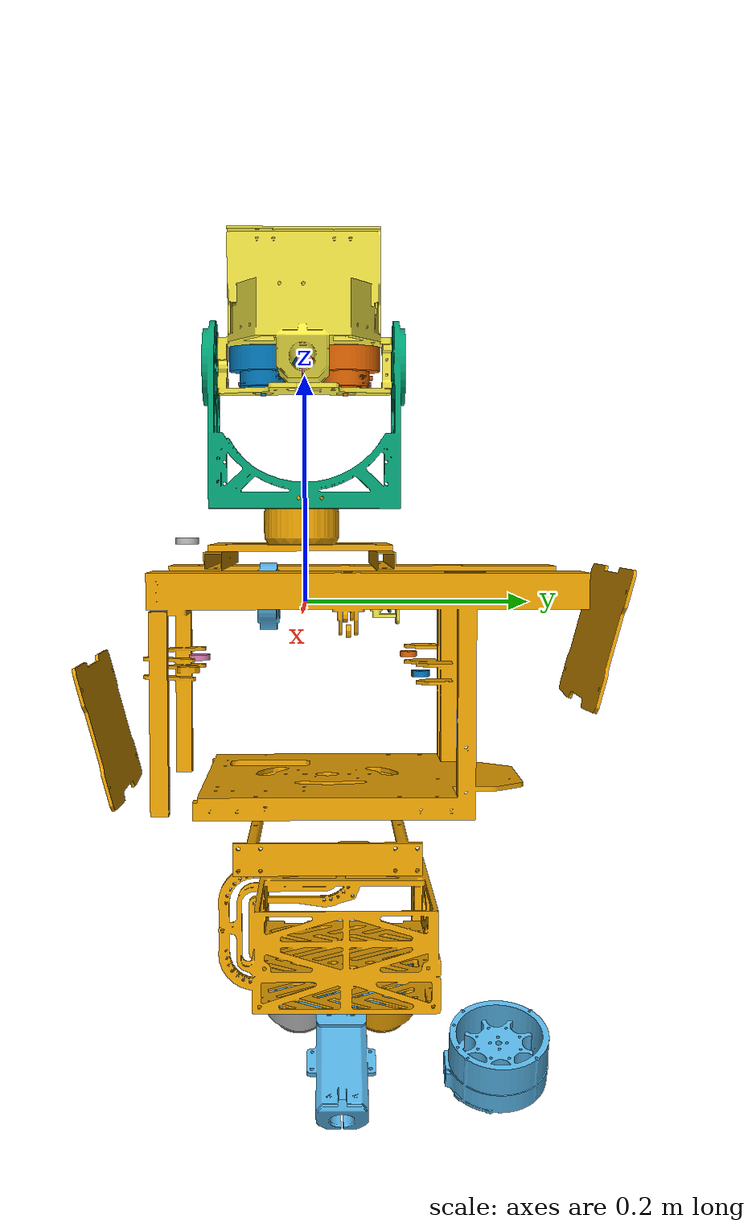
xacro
<?xml version="1.0"?>
<robot xmlns:xacro="http://www.ros.org/wiki/xacro" name="sentry">

    <xacro:arg name="load_chassis" default="true"/>
    <xacro:arg name="load_gimbal" default="true"/>
    <xacro:arg name="load_shooter" default="true"/>
    <xacro:arg name="use_simulation" default="true"/>

    <xacro:if value="$(arg load_chassis)">
        <xacro:include filename="$(find rm_description)/urdf/sentry/chassis.urdf.xacro"/>
        <xacro:include filename="$(find rm_description)/urdf/sentry/chassis.transmission.urdf.xacro"/>
        <xacro:chassis use_simulation="$(arg use_simulation)"/>
    </xacro:if>

    <xacro:if value="$(arg load_gimbal)">
        <xacro:include filename="$(find rm_description)/urdf/sentry/lower_gimbal.urdf.xacro"/>
        <xacro:include filename="$(find rm_description)/urdf/sentry/lower_gimbal.transmission.urdf.xacro"/>

        <xacro:include filename="$(find rm_description)/urdf/sentry/upper_gimbal.urdf.xacro"/>
        <xacro:include filename="$(find rm_description)/urdf/sentry/upper_gimbal.transmission.urdf.xacro"/>
    </xacro:if>

    <xacro:if value="$(arg load_shooter)">
        <xacro:include filename="$(find rm_description)/urdf/sentry/upper_shooter.urdf.xacro"/>
        <xacro:include filename="$(find rm_description)/urdf/sentry/upper_shooter.transmission.urdf.xacro"/>

        <xacro:include filename="$(find rm_description)/urdf/sentry/lower_shooter.urdf.xacro"/>
        <xacro:include filename="$(find rm_description)/urdf/sentry/lower_shooter.transmission.urdf.xacro"/>
    </xacro:if>

    <xacro:if value="$(arg use_simulation)">
        <gazebo>
            <plugin name="rm_ros_control" filename="librm_robot_hw_sim.so">
                <robotNamespace>/</robotNamespace>
                <robotSimType>rm_gazebo/RmRobotHWSim</robotSimType>
            </plugin>
        </gazebo>
    </xacro:if>

</robot>

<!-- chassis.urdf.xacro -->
<robot xmlns:xacro="http://www.ros.org/wiki/xacro">

    <xacro:include filename="driven_wheel1.urdf.xacro"/>
    <xacro:include filename="driven_wheel2.urdf.xacro"/>
    <xacro:include filename="driven_wheel3.urdf.xacro"/>

    <xacro:macro name="chassis" params="use_simulation">

        <link name="base_link">
            <inertial>
                <mass value="6982.046e-3"/>
                <origin xyz="2.335e-3 21.529e-3 -63.905e-3"/>
                <inertia ixx="1.984e-1" ixy="1.366e-3" ixz="2.748e-3" iyy="1.284e-1"
                         iyz="3.820e-3" izz="1.524e-1"/>
            </inertial>
            <visual>
                <origin xyz="0 0 0" rpy="0 0 0"/>
                <geometry>
                    <mesh filename="package://rm_description/meshes/sentry/base_link.stl" scale="0.001 0.001 0.001"/>
                </geometry>
            </visual>
            <collision>
                <origin xyz="0 0 0" rpy="0 0 0"/>
                <geometry>
                    <mesh filename="package://rm_description/meshes/sentry/base_link.stl" scale="0.001 0.001 0.001"/>
                </geometry>
            </collision>
        </link>

        <link name="drive_wheel_link">
            <inertial>
                <mass value="65.448e-3"/>
                <origin xyz="0.027e-3 29.066e-3 0.001e-3"/>
                <inertia ixx="74809.989e-9" ixy="-10.328e-9" ixz="-0.001e-9" iyy="32620.511e-9"
                         iyz="-2.066e-9" izz="74795.135e-9"/>
            </inertial>
            <visual>
                <origin xyz="0 0 0" rpy="0 0 0"/>
                <geometry>
                    <mesh filename="package://rm_description/meshes/sentry/drive_wheel.stl" scale="0.001 0.001 0.001"/>
                </geometry>
            </visual>
            <collision>
                <origin xyz="0 0 0" rpy="0 0 0"/>
                <geometry>
                    <mesh filename="package://rm_description/meshes/sentry/drive_wheel.stl" scale="0.001 0.001 0.001"/>
                </geometry>
            </collision>
        </link>

        <joint name="drive_wheel_joint" type="revolute">
            <axis xyz="0 1 0"/>
            <limit effort="1.2" velocity="34" lower="-1e9" upper="1e9"/>
            <parent link="base_link"/>
            <child link="drive_wheel_link"/>
            <origin xyz="0 -63.36e-3 5e-3" rpy="0 0 0"/>
        </joint>

        <xacro:if value="$(arg use_simulation)">
            <xacro:driven_wheel1 num="1">
                <origin rpy="${-pi/2} 0 0"/>
                <axis xyz="0 1 0"/>
                <origin xyz="-0.0977 0.0839 -0.013" rpy="0 0 0"/>
            </xacro:driven_wheel1>

            <xacro:driven_wheel1 num="2">
                <origin rpy="${-pi/2} 0 0"/>
                <axis xyz="0 1 0"/>
                <origin xyz="0.0977 0.0839 -0.013" rpy="0 0 0"/>
            </xacro:driven_wheel1>

            <xacro:driven_wheel2 num="3">
                <origin rpy="0 0 0"/>
                <axis xyz="0 0 1"/>
                <origin xyz="0.11 0.098 -0.05486" rpy="0 0 0"/>
            </xacro:driven_wheel2>

            <xacro:driven_wheel2 num="4">
                <origin rpy="0 0 0"/>
                <axis xyz="0 0 1"/>
                <origin xyz="-0.11 0.098 -0.05486" rpy="0 0 0"/>
            </xacro:driven_wheel2>

            <xacro:driven_wheel3 num="5">
                <origin rpy="0 0 0"/>
                <axis xyz="0 0 1"/>
                <origin xyz="-0.07 -0.1 -0.05527" rpy="0 0 0"/>
            </xacro:driven_wheel3>

            <xacro:driven_wheel3 num="6">
                <origin rpy="0 0 0"/>
                <axis xyz="0 0 1"/>
                <origin xyz="0.07 -0.1 0.05527" rpy="0 0 0"/>
            </xacro:driven_wheel3>
        </xacro:if>

    </xacro:macro>

</robot>

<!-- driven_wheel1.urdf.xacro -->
<robot xmlns:xacro="http://www.ros.org/wiki/xacro">

  <xacro:property name="wheel_joint_effort" value="5"/>
  <xacro:property name="wheel_joint_velocity" value="50"/>

  <xacro:macro name="driven_wheel1" params="num *pose *axis *origin ">
      <link name="link_driven_wheel${num}">
          <visual>
              <xacro:insert_block name="pose"/>
              <geometry>
                  <mesh filename="package://rm_description/meshes/sentry/driven_wheel1.stl"
                        scale="0.001 0.001 0.001"/>
              </geometry>
          </visual>
          <inertial>
              <mass value="11.136e-3"/>
              <origin xyz="0 0 0" rpy="0 0 0"/>
              <inertia ixx="2319.294e-9" ixy="-0.016e-9" ixz="-2.80e-9" iyy="2720.243e-9"
                       iyz="-7.716e-9" izz="1014.719e-9"/>
          </inertial>
          <collision>
              <xacro:insert_block name="pose"/>
              <geometry>
                  <mesh filename="package://rm_description/meshes/sentry/driven_wheel1.stl"
                        scale="0.001 0.001 0.001"/>
              </geometry>
          </collision>
      </link>

    <joint name="joint_wheel${num}" type="continuous">
      <parent link="base_link"/>
      <child link="link_driven_wheel${num}"/>
      <xacro:insert_block name="axis"/>
      <xacro:insert_block name="origin"/>
      <limit effort="${wheel_joint_effort}" velocity="${wheel_joint_velocity}" lower="-1e16" upper="1e16"/>
      <dynamics damping="0.0" friction="0.05"/>
    </joint>

  </xacro:macro>

</robot>

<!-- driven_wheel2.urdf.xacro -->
<robot xmlns:xacro="http://www.ros.org/wiki/xacro">

    <xacro:property name="wheel_joint_effort" value="5"/>
    <xacro:property name="wheel_joint_velocity" value="50"/>

    <xacro:macro name="driven_wheel2" params="num *pose *axis *origin ">
        <link name="link_driven_wheel${num}">
            <visual>
                <xacro:insert_block name="pose"/>
                <geometry>
                    <mesh filename="package://rm_description/meshes/sentry/driven_wheel2.stl"
                          scale="0.001 0.001 0.001"/>
                </geometry>
            </visual>
            <inertial>
                <mass value="1.527e-3"/>
                <origin xyz="0 0 0" rpy="0 0 0"/>
                <inertia ixx="29.25e-9" ixy="-3.862e-14" ixz="-0.001e-9" iyy="29.251e-9"
                         iyz="-0.001e-9" izz="52.083e-9"/>
            </inertial>
            <collision>
                <xacro:insert_block name="pose"/>
                <geometry>
                    <mesh filename="package://rm_description/meshes/sentry/driven_wheel2.stl"
                          scale="0.001 0.001 0.001"/>
                </geometry>
            </collision>
        </link>

        <joint name="joint_wheel${num}" type="continuous">
            <parent link="base_link"/>
            <child link="link_driven_wheel${num}"/>
            <xacro:insert_block name="axis"/>
            <xacro:insert_block name="origin"/>
            <limit effort="${wheel_joint_effort}" velocity="${wheel_joint_velocity}" lower="-1e16" upper="1e16"/>
            <dynamics damping="0.0" friction="0.05"/>
        </joint>

    </xacro:macro>

</robot>

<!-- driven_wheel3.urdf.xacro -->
<robot xmlns:xacro="http://www.ros.org/wiki/xacro">

    <xacro:property name="wheel_joint_effort" value="5"/>
    <xacro:property name="wheel_joint_velocity" value="50"/>

    <xacro:macro name="driven_wheel3" params="num *pose *axis *origin ">
        <link name="link_driven_wheel${num}">
            <visual>
                <xacro:insert_block name="pose"/>
                <geometry>
                    <mesh filename="package://rm_description/meshes/sentry/driven_wheel3.stl"
                          scale="0.001 0.001 0.001"/>
                </geometry>
            </visual>
            <inertial>
                <mass value="2.388e-3"/>
                <origin xyz="0 0 0" rpy="0 0 0"/>
                <inertia ixx="68.735e-9" ixy="0" ixz="-0.009e-9" iyy="68.736e-9"
                         iyz="-0.003e-9" izz="127.166e-9"/>
            </inertial>
            <collision>
                <xacro:insert_block name="pose"/>
                <geometry>
                    <mesh filename="package://rm_description/meshes/sentry/driven_wheel3.stl"
                          scale="0.001 0.001 0.001"/>
                </geometry>
            </collision>
        </link>

        <joint name="joint_wheel${num}" type="continuous">
            <parent link="base_link"/>
            <child link="link_driven_wheel${num}"/>
            <xacro:insert_block name="axis"/>
            <xacro:insert_block name="origin"/>
            <limit effort="${wheel_joint_effort}" velocity="${wheel_joint_velocity}" lower="-1e16" upper="1e16"/>
            <dynamics damping="0.0" friction="0.05"/>
        </joint>

    </xacro:macro>

</robot>

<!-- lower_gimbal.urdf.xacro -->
<robot xmlns:xacro="http://www.ros.org/wiki/xacro">

  <xacro:property name="threshold" value="0.1"/>
  <xacro:property name="yaw_lower_limit" value="-3.0"/>
  <xacro:property name="yaw_upper_limit" value="1.885"/>
  <xacro:property name="pitch_lower_limit" value="0.009"/>
  <xacro:property name="pitch_upper_limit" value="0.917"/>

  <link name="lower_yaw">
    <visual>
      <geometry>
        <mesh filename="package://rm_description/meshes/sentry/lower_yaw.stl"
              scale="0.001 0.001 0.001"/>
      </geometry>
    </visual>
    <inertial>
      <mass value="1.84153"/>
      <origin xyz="-48.613e-3 -7.311e-3 -40.711e-3" rpy="0 0 0"/>
      <inertia ixx="9.308e-3" ixy="1.131e-3" ixz="-2.237e-3" iyy="2.582e-2"
               iyz="-5.566e-4" izz="2.598e-2"/>
    </inertial>
    <collision>
      <origin xyz="0 0 0" rpy="0 0 0"/>
      <geometry>
        <mesh filename="package://rm_description/meshes/sentry/lower_yaw.stl"
              scale="0.001 0.001 0.001"/>
      </geometry>
    </collision>
  </link>

  <joint name="lower_yaw_joint" type="revolute">
    <parent link="base_link"/>
    <child link="lower_yaw"/>
    <axis xyz="0 0 1"/>
    <origin xyz="2.261e-3 31.206e-3 -235.253e-3"/>
    <dynamics damping="0" friction="0.1"/>
    <limit effort="1.2" velocity="34" lower="${yaw_lower_limit}" upper="${yaw_upper_limit}"/>
    <safety_controller k_position="100" k_velocity="0.1"
                       soft_lower_limit="${yaw_lower_limit+threshold}"
                       soft_upper_limit="${yaw_upper_limit-threshold}"/>
  </joint>

  <link name="lower_pitch">
    <inertial>
      <mass value="725.237e-3"/>
      <origin xyz="4.587e-3 2.933e-3 17.233e-3"/>
      <inertia ixx="2.408e-3" ixy="7.760e-5" ixz="-8.109e-5" iyy="1.183e-3"
               iyz="-1.337e-4" izz="2.824e-3"/>
    </inertial>
    <visual>
      <origin xyz="0 0 0" rpy="0 0 0"/>
      <geometry>
        <mesh filename="package://rm_description/meshes/sentry/lower_pitch.stl" scale="0.001 0.001 0.001"/>
      </geometry>
    </visual>
    <collision>
      <origin xyz="0 0 0" rpy="0 0 0"/>
      <geometry>
        <mesh filename="package://rm_description/meshes/sentry/lower_pitch.stl" scale="0.001 0.001 0.001"/>
      </geometry>
    </collision>
  </link>

  <joint name="lower_pitch_joint" type="revolute">
    <parent link="lower_yaw"/>
    <child link="lower_pitch"/>
    <axis xyz="0 1 0"/>
    <origin xyz="0 0 -0.1"/>
    <dynamics damping="0" friction="0.1"/>
    <limit effort="1.2" velocity="13.82" lower="${pitch_lower_limit}" upper="${pitch_upper_limit}"/>
    <safety_controller k_position="100" k_velocity="0.1"
                       soft_lower_limit="${pitch_lower_limit+threshold}"
                       soft_upper_limit="${pitch_upper_limit-threshold}"/>
  </joint>

</robot>

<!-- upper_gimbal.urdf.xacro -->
<robot xmlns:xacro="http://www.ros.org/wiki/xacro">

    <xacro:property name="threshold" value="0.1"/>
    <xacro:property name="yaw_lower_limit" value="-3.764"/>
    <xacro:property name="yaw_upper_limit" value="2.1"/>
    <xacro:property name="pitch_lower_limit" value="-0.6"/>
    <xacro:property name="pitch_upper_limit" value="0.6"/>

    <link name="upper_yaw">
        <visual>
            <geometry>
                <mesh filename="package://rm_description/meshes/sentry/upper_yaw.stl"
                      scale="0.001 0.001 0.001"/>
            </geometry>
        </visual>
        <inertial>
            <mass value="934.339e-3"/>
            <origin xyz="-0.08e-3 -61.185e-3 90.777e-3" rpy="0 0 0"/>
            <inertia ixx="1.880e-2" ixy="-6662.219e-9" ixz="7064.827e-9" iyy="1.083e-2"
                     iyz="7.150e-3" izz="9.057e-3"/>
        </inertial>
        <collision>
            <origin xyz="0 0 0" rpy="0 0 0"/>
            <geometry>
                <mesh filename="package://rm_description/meshes/sentry/upper_yaw.stl"
                      scale="0.001 0.001 0.001"/>
            </geometry>
        </collision>
    </link>

    <joint name="upper_yaw_joint" type="revolute">
        <parent link="base_link"/>
        <child link="upper_yaw"/>
        <axis xyz="0 0 1"/>
        <origin xyz="0 0 83.4e-3"/>
        <dynamics damping="0" friction="0.1"/>
        <limit effort="1.2" velocity="13.82" lower="${yaw_lower_limit}" upper="${yaw_upper_limit}"/>
        <safety_controller k_position="100" k_velocity="0.1"
                           soft_lower_limit="${yaw_lower_limit+threshold}"
                           soft_upper_limit="${yaw_upper_limit-threshold}"/>
    </joint>

    <link name="upper_pitch">
        <inertial>
            <mass value="1227.797e-3"/>
            <origin xyz="15.667e-3 -0.268e-3 27.267e-3"/>
            <inertia ixx="4.484e-3" ixy="813.964e-9" ixz="2.786e-4" iyy="6.599e-3"
                     iyz="-6822.846e-9" izz="5.343E-3"/>
        </inertial>
        <visual>
            <origin xyz="0 0 0" rpy="0 0 0"/>
            <geometry>
                <mesh filename="package://rm_description/meshes/sentry/upper_pitch.stl" scale="0.001 0.001 0.001"/>
            </geometry>
        </visual>
        <collision>
            <origin xyz="0 0 0" rpy="0 0 0"/>
            <geometry>
                <mesh filename="package://rm_description/meshes/sentry/upper_pitch.stl" scale="0.001 0.001 0.001"/>
            </geometry>
        </collision>
    </link>

    <joint name="upper_pitch_joint" type="revolute">
        <parent link="upper_yaw"/>
        <child link="upper_pitch"/>
        <axis xyz="0 1 0"/>
        <origin xyz="0 0 0.125"/>
        <dynamics damping="0" friction="0.1"/>
        <limit effort="1.2" velocity="13.82" lower="${pitch_lower_limit}" upper="${pitch_upper_limit}"/>
        <safety_controller k_position="100" k_velocity="0.1"
                           soft_lower_limit="${pitch_lower_limit+threshold}"
                           soft_upper_limit="${pitch_upper_limit-threshold}"/>
    </joint>

</robot>

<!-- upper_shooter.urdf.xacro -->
<robot xmlns:xacro="http://www.ros.org/wiki/xacro">

    <xacro:include filename="$(find rm_description)/urdf/common/friction.urdf.xacro"/>

    <xacro:property name="wheel_offset_x" value="0.009"/>
    <xacro:property name="wheel_offset_y" value="0.0365"/>
    <xacro:property name="wheel_offset_z" value="0.00576"/>

    <xacro:friction_wheel prefixs="upper_left" connected_to="upper_pitch"
                          wheel_x_offset="${wheel_offset_x}" wheel_y_offset="${-wheel_offset_y}"
                          wheel_z_offset="${wheel_offset_z}"/>

    <xacro:friction_wheel prefixs="upper_right" connected_to="upper_pitch"
                          wheel_x_offset="${wheel_offset_x}" wheel_y_offset="${wheel_offset_y}"
                          wheel_z_offset="${wheel_offset_z}"/>

    <link name="upper_trigger">
        <inertial>
            <mass value="0.328"/>
            <origin xyz="1.854e-3 -4.952e-3 20.252e-3"/>
            <inertia ixx="5.284e-4" ixy="26474.311e-9" ixz="-5533.967e-9" iyy="3.633e-4"
                     iyz="3258.006e-9" izz="4.750e-4"/>
        </inertial>
        <visual>
            <origin xyz="0 0 0" rpy="0 0 0"/>
            <geometry>
                <mesh filename="package://rm_description/meshes/sentry/upper_trigger.stl" scale="0.001 0.001 0.001"/>
            </geometry>
        </visual>
        <collision>
            <origin xyz="0 0 0" rpy="0 0 0"/>
            <geometry>
                <mesh filename="package://rm_description/meshes/sentry/upper_trigger.stl" scale="0.001 0.001 0.001"/>
            </geometry>
        </collision>
    </link>

    <joint name="upper_trigger_joint" type="continuous">
        <origin xyz="-64.86e-3 0 -19e-3" rpy="0 0 0"/>
        <dynamics damping="0.0" friction="0.01"/>
        <limit effort="1.0" velocity="43.54" lower="-1e16" upper="1e16"/>
        <parent link="upper_pitch"/>
        <child link="upper_trigger"/>
        <axis xyz="0 0 1 "/>
    </joint>

</robot>

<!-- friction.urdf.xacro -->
<robot xmlns:xacro="http://www.ros.org/wiki/xacro">

    <xacro:macro name="friction_wheel" params="prefixs:='' connected_to:=''  wheel_x_offset:='0' wheel_y_offset:='0' wheel_z_offset:='0' ">

        <link name="${prefixs}_friction_wheel">
            <inertial>
                <mass value="0.15269"/>
                <origin xyz="0 0 -0.004"/>
                <inertia ixx="4.776e-5" ixy="2.192e-7" ixz="-1.28e-7" iyy="4.759e-5"
                         iyz="-1.683e-7" izz="6.148e-5"/>
            </inertial>
            <visual>
                <origin xyz="0 0 0" rpy="0 0 0"/>
                <geometry>
                    <mesh filename="package://rm_description/meshes/common/friction.stl" scale="0.001 0.001 0.001" />
                </geometry>
            </visual>
            <collision>
                <origin xyz="0 0 0" rpy="0 0 0"/>
                <geometry>
                    <mesh filename="package://rm_description/meshes/common/friction.stl"  scale="0.001 0.001 0.001" />
                </geometry>
            </collision>
        </link>

        <joint name="${prefixs}_friction_wheel_joint"  type="continuous">
            <origin xyz="${wheel_x_offset} ${wheel_y_offset} ${wheel_offset_z}" rpy="0 0 0"/>"
            <dynamics damping="0.0" friction="0.01"/>
            <limit upper="1e16" lower="-1e16" effort="0.156" velocity="942.00"/>
            <parent link="${connected_to}" />
            <child link="${prefixs}_friction_wheel" />
            <axis xyz="0 0 1" />

        </joint>

    </xacro:macro>
</robot>

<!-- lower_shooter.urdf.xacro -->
<robot xmlns:xacro="http://www.ros.org/wiki/xacro">

  <xacro:include filename="$(find rm_description)/urdf/common/friction.urdf.xacro"/>

  <xacro:property name="wheel_offset_x" value="0.0504"/>
  <xacro:property name="wheel_offset_y" value="0.0365"/>
  <xacro:property name="wheel_offset_z" value="0.01072"/>

  <xacro:friction_wheel prefixs="lower_left" connected_to="lower_pitch"
                        wheel_x_offset="${wheel_offset_x}" wheel_y_offset="${-wheel_offset_y}"
                        wheel_z_offset="${wheel_offset_z}"/>

  <xacro:friction_wheel prefixs="lower_right" connected_to="lower_pitch"
                        wheel_x_offset="${wheel_offset_x}" wheel_y_offset="${wheel_offset_y}"
                        wheel_z_offset="${wheel_offset_z}"/>

  <link name="lower_trigger">
    <inertial>
      <mass value="0.25496"/>
      <origin xyz="0.282e-3 0.011e-3 18.873e-3"/>
      <inertia ixx="2.844e-4" ixy="-432.025e-9" ixz="-882.662e-9" iyy="2.858e-4"
               iyz="-19.177e-9" izz="2.347e-4"/>
    </inertial>
    <visual>
      <origin xyz="0 0 0" rpy="0 0 0"/>
      <geometry>
        <mesh filename="package://rm_description/meshes/sentry/lower_trigger.stl" scale="0.001 0.001 0.001"/>
      </geometry>
    </visual>
    <collision>
      <origin xyz="0 0 0" rpy="0 0 0"/>
      <geometry>
        <mesh filename="package://rm_description/meshes/sentry/lower_trigger.stl" scale="0.001 0.001 0.001"/>
      </geometry>
    </collision>
  </link>

  <joint name="lower_trigger_joint" type="continuous">
    <origin xyz="0 0.15 -0.136" rpy="0 0 0"/>
    <dynamics damping="0.0" friction="0.01"/>
    <limit effort="1.0" velocity="43.54" lower="-1e16" upper="1e16"/>
    <parent link="lower_pitch"/>
    <child link="lower_trigger"/>
    <axis xyz="0 0 1 "/>
  </joint>

</robot>
